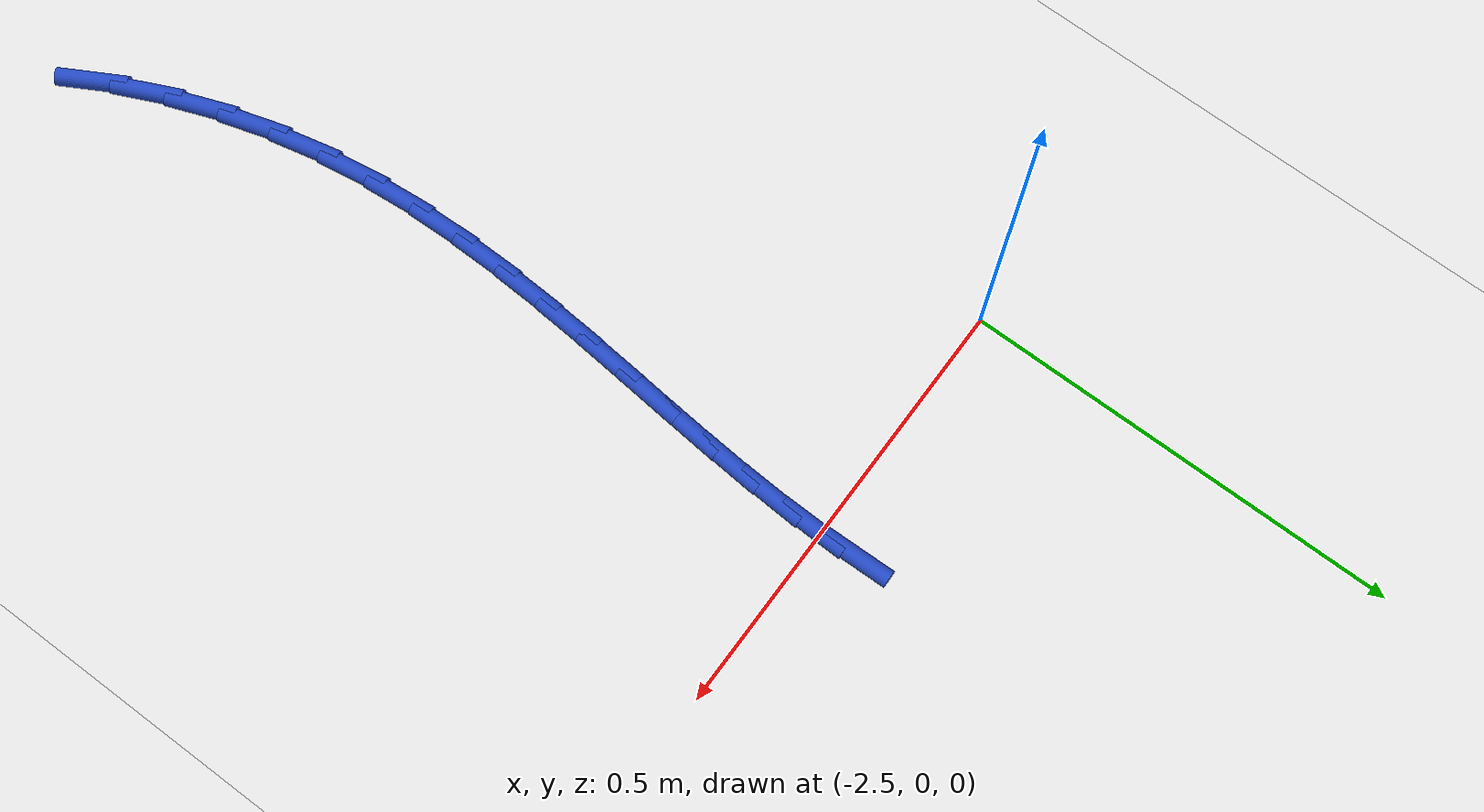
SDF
<sdf version="1.6">
 <world name="default">
  <model name="ground_plane">
   <static>1</static>
   <link name="link">
    <collision name="collision">
     <geometry><plane><normal>0 0 1</normal><size>100 100</size></plane></geometry>
     <surface><friction><ode><mu>100</mu><mu2>50</mu2></ode></friction></surface>
    </collision>
    <visual name="visual">
     <cast_shadows>0</cast_shadows>
     <geometry><plane><normal>0 0 1</normal><size>100 100</size></plane></geometry>
     <material>
      <script><uri>file://media/materials/scripts/gazebo.material</uri><name>Gazebo/WhiteGlow</name></script>
     </material>
    </visual>
   </link>
  </model>
  <model name="line">
   <link name="link_72">
    <pose>-2.2121891562904112 0.044664760446835025 0.01 0 1.57 -1.5483322867702076</pose>
    <collision name="collision">
     <geometry><cylinder><radius>0.01</radius><length>0.08</length></cylinder></geometry>
    </collision>
    <visual name="visual">
     <material>
      <script><name>Gazebo/Blue</name><uri>file://media/materials/scripts/gazebo.material</uri></script>
     </material>
     <geometry><cylinder><radius>0.01</radius><length>0.08</length></cylinder></geometry>
    </visual>
   </link>
   <link name="link_73">
    <pose>-2.210986218774197 -0.008875705147253273 0.01 0 1.57 1.547877374138946</pose>
    <collision name="collision">
     <geometry><cylinder><radius>0.01</radius><length>0.08</length></cylinder></geometry>
    </collision>
    <visual name="visual">
     <material>
      <script><name>Gazebo/Blue</name><uri>file://media/materials/scripts/gazebo.material</uri></script>
     </material>
     <geometry><cylinder><radius>0.01</radius><length>0.08</length></cylinder></geometry>
    </visual>
   </link>
   <link name="link_74">
    <pose>-2.212228718219742 -0.06307896233232571 0.01 0 1.57 1.5138994691836993</pose>
    <collision name="collision">
     <geometry><cylinder><radius>0.01</radius><length>0.08</length></cylinder></geometry>
    </collision>
    <visual name="visual">
     <material>
      <script><name>Gazebo/Blue</name><uri>file://media/materials/scripts/gazebo.material</uri></script>
     </material>
     <geometry><cylinder><radius>0.01</radius><length>0.08</length></cylinder></geometry>
    </visual>
   </link>
   <link name="link_75">
    <pose>-2.215352193831203 -0.11791686589756473 0.01 0 1.57 1.4908867956658542</pose>
    <collision name="collision">
     <geometry><cylinder><radius>0.01</radius><length>0.08</length></cylinder></geometry>
    </collision>
    <visual name="visual">
     <material>
      <script><name>Gazebo/Blue</name><uri>file://media/materials/scripts/gazebo.material</uri></script>
     </material>
     <geometry><cylinder><radius>0.01</radius><length>0.08</length></cylinder></geometry>
    </visual>
   </link>
   <link name="link_76">
    <pose>-2.219792184812738 -0.17336127063215212 0.01 0 1.57 1.4783828751766026</pose>
    <collision name="collision">
     <geometry><cylinder><radius>0.01</radius><length>0.08</length></cylinder></geometry>
    </collision>
    <visual name="visual">
     <material>
      <script><name>Gazebo/Blue</name><uri>file://media/materials/scripts/gazebo.material</uri></script>
     </material>
     <geometry><cylinder><radius>0.01</radius><length>0.08</length></cylinder></geometry>
    </visual>
   </link>
   <link name="link_77">
    <pose>-2.224984230368502 -0.22938403132526952 0.01 0 1.57 1.4759893635850043</pose>
    <collision name="collision">
     <geometry><cylinder><radius>0.01</radius><length>0.08</length></cylinder></geometry>
    </collision>
    <visual name="visual">
     <material>
      <script><name>Gazebo/Blue</name><uri>file://media/materials/scripts/gazebo.material</uri></script>
     </material>
     <geometry><cylinder><radius>0.01</radius><length>0.08</length></cylinder></geometry>
    </visual>
   </link>
   <link name="link_78">
    <pose>-2.230363869702654 -0.28595700276609953 0.01 0 1.57 1.483397698757285</pose>
    <collision name="collision">
     <geometry><cylinder><radius>0.01</radius><length>0.08</length></cylinder></geometry>
    </collision>
    <visual name="visual">
     <material>
      <script><name>Gazebo/Blue</name><uri>file://media/materials/scripts/gazebo.material</uri></script>
     </material>
     <geometry><cylinder><radius>0.01</radius><length>0.08</length></cylinder></geometry>
    </visual>
   </link>
   <link name="link_79">
    <pose>-2.23536664201935 -0.3430520397438222 0.01 0 1.57 1.5003881930009453</pose>
    <collision name="collision">
     <geometry><cylinder><radius>0.01</radius><length>0.08</length></cylinder></geometry>
    </collision>
    <visual name="visual">
     <material>
      <script><name>Gazebo/Blue</name><uri>file://media/materials/scripts/gazebo.material</uri></script>
     </material>
     <geometry><cylinder><radius>0.01</radius><length>0.08</length></cylinder></geometry>
    </visual>
   </link>
   <link name="link_80">
    <pose>-2.2394280865227465 -0.40064099704762013 0.01 0 1.57 1.5268032388371462</pose>
    <collision name="collision">
     <geometry><cylinder><radius>0.01</radius><length>0.08</length></cylinder></geometry>
    </collision>
    <visual name="visual">
     <material>
      <script><name>Gazebo/Blue</name><uri>file://media/materials/scripts/gazebo.material</uri></script>
     </material>
     <geometry><cylinder><radius>0.01</radius><length>0.08</length></cylinder></geometry>
    </visual>
   </link>
   <link name="link_81">
    <pose>-2.2419837424170006 -0.45869572946667475 0.01 0 1.57 1.5624978870059154</pose>
    <collision name="collision">
     <geometry><cylinder><radius>0.01</radius><length>0.08</length></cylinder></geometry>
    </collision>
    <visual name="visual">
     <material>
      <script><name>Gazebo/Blue</name><uri>file://media/materials/scripts/gazebo.material</uri></script>
     </material>
     <geometry><cylinder><radius>0.01</radius><length>0.08</length></cylinder></geometry>
    </visual>
   </link>
   <link name="link_82">
    <pose>-2.2424691489062694 -0.517188091790169 0.01 0 1.57 -1.5343229281393642</pose>
    <collision name="collision">
     <geometry><cylinder><radius>0.01</radius><length>0.08</length></cylinder></geometry>
    </collision>
    <visual name="visual">
     <material>
      <script><name>Gazebo/Blue</name><uri>file://media/materials/scripts/gazebo.material</uri></script>
     </material>
     <geometry><cylinder><radius>0.01</radius><length>0.08</length></cylinder></geometry>
    </visual>
   </link>
   <link name="link_83">
    <pose>-2.2403198451947097 -0.5760899388072827 0.01 0 1.57 -1.4808208344254752</pose>
    <collision name="collision">
     <geometry><cylinder><radius>0.01</radius><length>0.08</length></cylinder></geometry>
    </collision>
    <visual name="visual">
     <material>
      <script><name>Gazebo/Blue</name><uri>file://media/materials/scripts/gazebo.material</uri></script>
     </material>
     <geometry><cylinder><radius>0.01</radius><length>0.08</length></cylinder></geometry>
    </visual>
   </link>
   <link name="link_84">
    <pose>-2.2349713704864786 -0.6353731253071986 0.01 0 1.57 -1.4191745720131188</pose>
    <collision name="collision">
     <geometry><cylinder><radius>0.01</radius><length>0.08</length></cylinder></geometry>
    </collision>
    <visual name="visual">
     <material>
      <script><name>Gazebo/Blue</name><uri>file://media/materials/scripts/gazebo.material</uri></script>
     </material>
     <geometry><cylinder><radius>0.01</radius><length>0.08</length></cylinder></geometry>
    </visual>
   </link>
   <link name="link_85">
    <pose>-2.2258592639857326 -0.695009506079098 0.01 0 1.57 -1.3512575477417346</pose>
    <collision name="collision">
     <geometry><cylinder><radius>0.01</radius><length>0.08</length></cylinder></geometry>
    </collision>
    <visual name="visual">
     <material>
      <script><name>Gazebo/Blue</name><uri>file://media/materials/scripts/gazebo.material</uri></script>
     </material>
     <geometry><cylinder><radius>0.01</radius><length>0.08</length></cylinder></geometry>
    </visual>
   </link>
   <link name="link_86">
    <pose>-2.2124997282467356 -0.7548814425891418 0.01 0 1.57 -1.2827129853121926</pose>
    <collision name="collision">
     <geometry><cylinder><radius>0.01</radius><length>0.08</length></cylinder></geometry>
    </collision>
    <visual name="visual">
     <material>
      <script><name>Gazebo/Blue</name><uri>file://media/materials/scripts/gazebo.material</uri></script>
     </material>
     <geometry><cylinder><radius>0.01</radius><length>0.08</length></cylinder></geometry>
    </visual>
   </link>
   <link name="link_87">
    <pose>-2.194877014223793 -0.8143520120610287 0.01 0 1.57 -1.213664323409909</pose>
    <collision name="collision">
     <geometry><cylinder><radius>0.01</radius><length>0.08</length></cylinder></geometry>
    </collision>
    <visual name="visual">
     <material>
      <script><name>Gazebo/Blue</name><uri>file://media/materials/scripts/gazebo.material</uri></script>
     </material>
     <geometry><cylinder><radius>0.01</radius><length>0.08</length></cylinder></geometry>
    </visual>
   </link>
   <link name="link_88">
    <pose>-2.1731437718123954 -0.8725974586546212 0.01 0 1.57 -1.1420013454729285</pose>
    <collision name="collision">
     <geometry><cylinder><radius>0.01</radius><length>0.08</length></cylinder></geometry>
    </collision>
    <visual name="visual">
     <material>
      <script><name>Gazebo/Blue</name><uri>file://media/materials/scripts/gazebo.material</uri></script>
     </material>
     <geometry><cylinder><radius>0.01</radius><length>0.08</length></cylinder></geometry>
    </visual>
   </link>
   <link name="link_89">
    <pose>-2.147452872990396 -0.9287937801367321 0.01 0 1.57 -1.0655385041338</pose>
    <collision name="collision">
     <geometry><cylinder><radius>0.01</radius><length>0.08</length></cylinder></geometry>
    </collision>
    <visual name="visual">
     <material>
      <script><name>Gazebo/Blue</name><uri>file://media/materials/scripts/gazebo.material</uri></script>
     </material>
     <geometry><cylinder><radius>0.01</radius><length>0.08</length></cylinder></geometry>
    </visual>
   </link>
  </model>
 </world>
</sdf>
